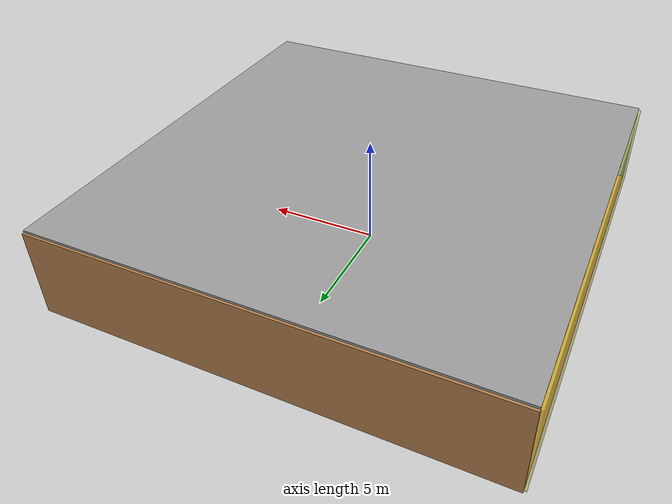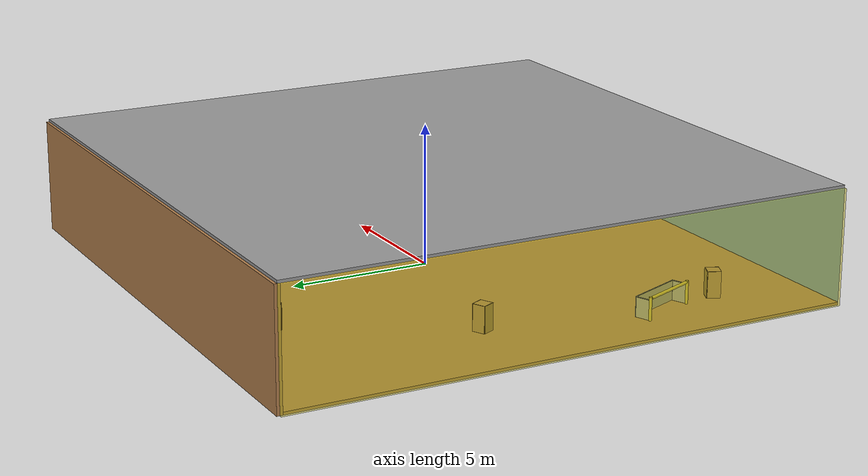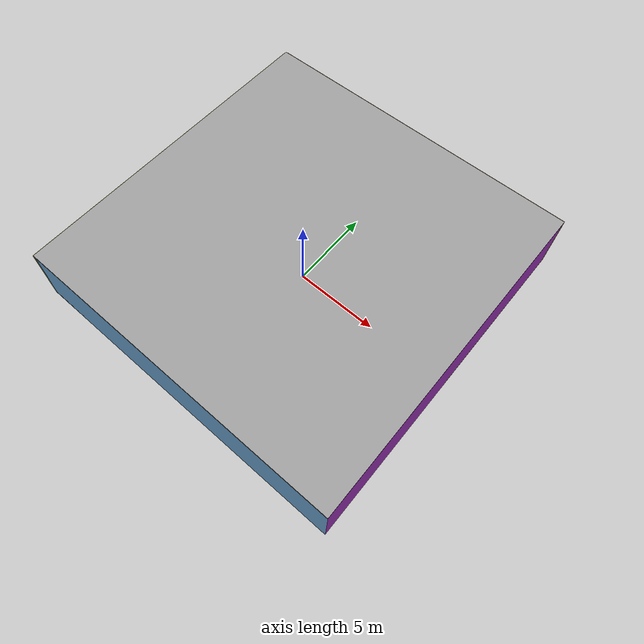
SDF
<sdf version="1.4">
 <world name="default">
  <physics type="ode">
   <max_step_size>0.001</max_step_size>
   <real_time_factor>1</real_time_factor>
   <real_time_update_rate>1000</real_time_update_rate>
   <gravity>0 0 -9.8</gravity>
  </physics>
  <scene><ambient>0.4 0.4 0.4 1</ambient><background>0.7 0.7 0.7 1</background><shadows>1</shadows></scene>
  <model name="Surrounding">
   <static>1</static>
   <link name="Ceiling">
    <collision name="Ceiling_Collision"><geometry><box><size>20 20 0.1</size></box></geometry></collision>
    <visual name="Ceiling_Visual">
     <geometry><box><size>20 20 0.1</size></box></geometry>
     <material>
      <script><uri>file://media/materials/scripts/gazebo.material</uri><name>Gazebo/GreyGradientSky</name></script>
     </material>
    </visual>
    <pose>0 0 4.05 0 0 0</pose>
   </link>
   <link name="Wall_South">
    <collision name="Wall_South_Collision">
     <geometry><box><size>20 0 4</size></box></geometry>
     <pose>0 0 2 0 -0 0</pose>
    </collision>
    <visual name="Wall_South_Visual">
     <pose>0 0 2 0 -0 0</pose>
     <geometry><box><size>20 0 4</size></box></geometry>
     <material>
      <script><uri>file://media/materials/scripts/gazebo.material</uri><name>Gazebo/SkyBlue</name></script>
     </material>
    </visual>
    <velocity_decay><linear>0</linear><angular>0</angular></velocity_decay>
    <pose>0 -10 0 0 -0 0</pose>
   </link>
   <link name="Wall_East">
    <collision name="Wall_21_Collision">
     <geometry><box><size>20 0 4</size></box></geometry>
     <pose>0 0 2 0 -0 0</pose>
    </collision>
    <visual name="Wall_21_Visual">
     <pose>0 0 2 0 -0 0</pose>
     <geometry><box><size>20 0 4</size></box></geometry>
     <material>
      <script><uri>file://media/materials/scripts/gazebo.material</uri><name>Gazebo/Purple</name></script>
     </material>
    </visual>
    <velocity_decay><linear>0</linear><angular>0</angular></velocity_decay>
    <pose>10 0 0 0 -0 1.5708</pose>
   </link>
   <link name="Wall_North">
    <collision name="Wall_22_Collision">
     <geometry><box><size>20 0.2 4</size></box></geometry>
     <pose>0 0 2 0 -0 0</pose>
    </collision>
    <visual name="Wall_22_Visual">
     <pose>0 0 2 0 -0 0</pose>
     <geometry><box><size>20 0.2 4</size></box></geometry>
     <material>
      <script><uri>file://media/materials/scripts/gazebo.material</uri><name>Gazebo/WoodPallet</name></script>
     </material>
    </visual>
    <velocity_decay><linear>0</linear><angular>0</angular></velocity_decay>
    <pose>0 10 0 0 -0 0</pose>
   </link>
   <link name="Wall_West">
    <collision name="Wall_23_Collision">
     <geometry><box><size>20 0.2 4</size></box></geometry>
     <pose>0 0 2 0 -0 0</pose>
    </collision>
    <visual name="Wall_23_Visual">
     <pose>0 0 2 0 -0 0</pose>
     <geometry><box><size>20 0.2 4</size></box></geometry>
     <material>
      <script>
       <uri>file://media/materials/scripts/gazebo.material</uri>
       <name>Gazebo/YellowTransparent</name>
      </script>
     </material>
    </visual>
    <velocity_decay><linear>0</linear><angular>0</angular></velocity_decay>
    <pose>-10 0 0 0 0 -1.5708</pose>
   </link>
   <link name="Ground_link">
    <collision name="collision">
     <pose>0 0 .05 0 -0 0</pose>
     <geometry><box><size>20 20 0.1</size></box></geometry>
    </collision>
    <visual name="visual">
     <pose>0 0 .05 0 -0 0</pose>
     <geometry><box><size>20 20 0.1</size></box></geometry>
     <material>
      <script><uri>file://media/materials/scripts/gazebo.material</uri><name>Gazebo/WoodPallet</name></script>
     </material>
    </visual>
   </link>
   <static>1</static>
  </model>
  <spherical_coordinates>
   <surface_model>EARTH_WGS84</surface_model>
   <latitude_deg>0</latitude_deg>
   <longitude_deg>0</longitude_deg>
   <elevation>0</elevation>
   <heading_deg>0</heading_deg>
  </spherical_coordinates>
  <light name="lightball_0" type="diffuse">
   <diffuse>0.8 0.8 0.8 1</diffuse>
   <specular>0.2 0.2 0.2 1</specular>
   <attenuation>
    <range>100</range>
    <constant>0.7</constant>
    <linear>0.01</linear>
    <quadratic>0.001</quadratic>
   </attenuation>
   <direction>-0.5 0.1 -0.9</direction>
   <pose>9.13939917648 9.8612160823 3.43034644834 0 0 0</pose>
  </light>
  <light name="lightball_1" type="diffuse">
   <diffuse>0.8 0.8 0.8 1</diffuse>
   <specular>0.2 0.2 0.2 1</specular>
   <attenuation>
    <range>100</range>
    <constant>0.7</constant>
    <linear>0.01</linear>
    <quadratic>0.001</quadratic>
   </attenuation>
   <direction>-0.5 0.1 -0.9</direction>
   <pose>9.60064232408 -0.35998015296 0.785826921883 0 0 0</pose>
  </light>
  <light name="lightball_2" type="diffuse">
   <diffuse>0.8 0.8 0.8 1</diffuse>
   <specular>0.2 0.2 0.2 1</specular>
   <attenuation>
    <range>100</range>
    <constant>0.7</constant>
    <linear>0.01</linear>
    <quadratic>0.001</quadratic>
   </attenuation>
   <direction>-0.5 0.1 -0.9</direction>
   <pose>-1.28250590999 9.57803224398 2.3583279484 0 0 0</pose>
  </light>
  <light name="lightball_3" type="diffuse">
   <diffuse>0.8 0.8 0.8 1</diffuse>
   <specular>0.2 0.2 0.2 1</specular>
   <attenuation>
    <range>100</range>
    <constant>0.7</constant>
    <linear>0.01</linear>
    <quadratic>0.001</quadratic>
   </attenuation>
   <direction>-0.5 0.1 -0.9</direction>
   <pose>-4.12718904429 0.610219349389 2.55968767813 0 0 0</pose>
  </light>
  <light name="lightball_4" type="diffuse">
   <diffuse>0.8 0.8 0.8 1</diffuse>
   <specular>0.2 0.2 0.2 1</specular>
   <attenuation>
    <range>100</range>
    <constant>0.7</constant>
    <linear>0.01</linear>
    <quadratic>0.001</quadratic>
   </attenuation>
   <direction>-0.5 0.1 -0.9</direction>
   <pose>6.45450647237 1.01437494456 1.45854030264 0 0 0</pose>
  </light>
  <light name="lightball_5" type="diffuse">
   <diffuse>0.8 0.8 0.8 1</diffuse>
   <specular>0.2 0.2 0.2 1</specular>
   <attenuation>
    <range>100</range>
    <constant>0.7</constant>
    <linear>0.01</linear>
    <quadratic>0.001</quadratic>
   </attenuation>
   <direction>-0.5 0.1 -0.9</direction>
   <pose>-2.19956640169 3.97587321433 3.80950229569 0 0 0</pose>
  </light>
  <light name="lightball_6" type="diffuse">
   <diffuse>0.8 0.8 0.8 1</diffuse>
   <specular>0.2 0.2 0.2 1</specular>
   <attenuation>
    <range>100</range>
    <constant>0.7</constant>
    <linear>0.01</linear>
    <quadratic>0.001</quadratic>
   </attenuation>
   <direction>-0.5 0.1 -0.9</direction>
   <pose>-9.65194826045 0.751010293527 0.845135341791 0 0 0</pose>
  </light>
  <include><uri>model://cabinet</uri><pose>-7.56042407956 -6.72585202928 0 0 0 1.16007953585</pose></include>
  <include>
   <uri>model://robocup_3Dsim_goal</uri>
   <pose>-8.19698917685 -4.55313382896 0 0 0 0.386605257699</pose>
  </include>
  <include><uri>model://cabinet</uri><pose>-6.86847499787 1.58467102818 0 0 0 2.02955436889</pose></include>
  <include><uri>model://cabinet</uri><pose>-3.73938970206 7.46713723432 0 0 0 0.338218561555</pose></include>
  <include><uri>model://cabinet</uri><pose>1.63533325452 -5.09006195883 0 0 0 1.01241287477</pose></include>
  <include>
   <uri>model://robocup_3Dsim_goal</uri>
   <pose>4.90880408286 -7.86368205661 0 0 0 2.72809418211</pose>
  </include>
  <include>
   <uri>model://construction_cone</uri>
   <pose>6.96912131402 1.87677186999 0 0 0 0.953491763693</pose>
  </include>
  <include>
   <uri>model://construction_cone</uri>
   <pose>7.39349116071 4.22412127843 0 0 0 1.04742863952</pose>
  </include>
  <include><uri>model://table</uri><pose>6.96762260493 7.8224314811 0 0 0 1.95295850678</pose></include>
 </world>
</sdf>

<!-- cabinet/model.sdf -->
<sdf version="1.5">
  <model name="cabinet">
    <static>true</static>
    <link name="cabinet_bottom_plate">
      <inertial>
        <pose>0 0 -1 0 0 0</pose>
        <inertia>
          <ixx>2.050000</ixx>
          <ixy>0</ixy>
          <ixz>0</ixz>
          <iyy>2.050000</iyy>
          <iyz>0</iyz>
          <izz>2.050000</izz>
        </inertia>
        <mass>25.000000</mass>
      </inertial>
      <collision name="cabinet_bottom_plate_geom">
        <pose>0 0 0.010000 0 0 0</pose>
        <geometry>
          <box>
            <size>0.450000 0.450000 0.020000</size>
          </box>
        </geometry>
      </collision>
      <visual name="cabinet_bottom_plate_geom_visual">
        <pose>0 0 0.010000 0 0 0</pose>
        <geometry>
          <box>
            <size>0.450000 0.450000 0.020000</size>
          </box>
        </geometry>
        <material>
          <script>
            <uri>model://media/materials/scripts/gazebo.material</uri>
            <name>Gazebo/Wood</name>
          </script>
        </material>
      </visual>
      <collision name="cabinet_bottom_plate_geom_cabinet_back_plate">
        <pose>0.235000 0 0.510000 0 0 0</pose>
        <geometry>
          <box>
            <size>0.020000 0.450000 1.020000</size>
          </box>
        </geometry>
      </collision>
      <visual name="cabinet_bottom_plate_geom_cabinet_back_plate_visual">
        <pose>0.235000 0 0.510000 0 0 0</pose>
        <geometry>
          <box>
            <size>0.020000 0.450000 1.020000</size>
          </box>
        </geometry>
        <material>
          <script>
            <uri>model://media/materials/scripts/gazebo.material</uri>
            <name>Gazebo/Wood</name>
          </script>
        </material>
      </visual>
      <collision name="cabinet_bottom_plate_geom_cabinet_left_plate">
        <pose>0 0.235000 0.510000 0 0 0</pose>
        <geometry>
          <box>
            <size>0.450000 0.020000 1.020000</size>
          </box>
        </geometry>
      </collision>
      <visual name="cabinet_bottom_plate_geom_cabinet_left_plate_visual">
        <pose>0 0.235000 0.510000 0 0 0</pose>
        <geometry>
          <box>
            <size>0.450000 0.020000 1.020000</size>
          </box>
        </geometry>
        <material>
          <script>
            <uri>model://media/materials/scripts/gazebo.material</uri>
            <name>Gazebo/Wood</name>
          </script>
        </material>
      </visual>
      <collision name="cabinet_bottom_plate_geom_cabinet_middle_plate">
        <pose>0 0 0.510000 0 0 0</pose>
        <geometry>
          <box>
            <size>0.450000 0.450000 0.020000</size>
          </box>
        </geometry>
      </collision>
      <visual name="cabinet_bottom_plate_geom_cabinet_middle_plate_visual">
        <pose>0 0 0.510000 0 0 0</pose>
        <geometry>
          <box>
            <size>0.450000 0.450000 0.020000</size>
          </box>
        </geometry>
        <material>
          <script>
            <uri>model://media/materials/scripts/gazebo.material</uri>
            <name>Gazebo/Wood</name>
          </script>
        </material>
      </visual>
      <collision name="cabinet_bottom_plate_geom_cabinet_right_plate">
        <pose>0 -0.235000 0.510000 0 0 0</pose>
        <geometry>
          <box>
            <size>0.450000 0.020000 1.020000</size>
          </box>
        </geometry>
      </collision>
      <visual name="cabinet_bottom_plate_geom_cabinet_right_plate_visual">
        <pose>0 -0.235000 0.510000 0 0 0</pose>
        <geometry>
          <box>
            <size>0.450000 0.020000 1.020000</size>
          </box>
        </geometry>
        <material>
          <script>
            <uri>model://media/materials/scripts/gazebo.material</uri>
            <name>Gazebo/Wood</name>
          </script>
        </material>
      </visual>
      <collision name="cabinet_bottom_plate_geom_cabinet_top_plate">
        <pose>0 0 1.010000 0 0 0</pose>
        <geometry>
          <box>
            <size>0.450000 0.450000 0.020000</size>
          </box>
        </geometry>
      </collision>
      <visual name="cabinet_bottom_plate_geom_cabinet_top_plate_visual">
        <pose>0 0 1.010000 0 0 0</pose>
        <geometry>
          <box>
            <size>0.450000 0.450000 0.020000</size>
          </box>
        </geometry>
        <material>
          <script>
            <uri>model://media/materials/scripts/gazebo.material</uri>
            <name>Gazebo/Wood</name>
          </script>
        </material>
      </visual>
    </link>
  </model>
</sdf>

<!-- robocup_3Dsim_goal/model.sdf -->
<sdf version="1.5">
  <model name="robocup_3d_goal">
    <static>true</static>
    <link name="left_post">
      <pose>0 1.05 0.45 0 0 0</pose>
      <collision name="collision">
        <geometry>
          <cylinder>
            <radius>0.05</radius>
            <length>0.9</length>
          </cylinder>
        </geometry>
      </collision>
      <visual name="visual">
        <geometry>
          <cylinder>
            <radius>0.05</radius>
            <length>0.9</length>
          </cylinder>
        </geometry>
        <material>
          <script>
            <uri>file://media/materials/scripts/gazebo.material</uri>
            <name>Gazebo/ZincYellow</name>
          </script>
        </material>
      </visual>
    </link>
    <link name="left_support_horiz_lower">
      <pose>0.30 1.05 0.01 0 0 0</pose>
      <collision name="collision">
        <geometry>
          <box>
            <size>0.50 0.02 0.02</size>
          </box>
        </geometry>
      </collision>
      <visual name="visual">
        <geometry>
          <box>
            <size>0.50 0.02 0.02</size>
          </box>
        </geometry>
        <material>
          <script>
            <uri>file://media/materials/scripts/gazebo.material</uri>
            <name>Gazebo/White</name>
          </script>
        </material>
      </visual>
    </link>
    <link name="left_support_horiz_upper">
      <pose>0.30 1.05 0.79 0 0 0</pose>
      <collision name="collision">
        <geometry>
          <box>
            <size>0.50 0.02 0.02</size>
          </box>
        </geometry>
      </collision>
      <visual name="visual">
        <geometry>
          <box>
            <size>0.50 0.02 0.02</size>
          </box>
        </geometry>
        <material>
          <script>
            <uri>file://media/materials/scripts/gazebo.material</uri>
            <name>Gazebo/White</name>
          </script>
        </material>
      </visual>
    </link>
    <link name="left_support_vertical">
      <pose>0.56 1.05 0.4 0 1.5708 0</pose>
      <collision name="collision">
        <geometry>
          <box>
            <size>0.80 0.02 0.02</size>
          </box>
        </geometry>
      </collision>
      <visual name="visual">
        <geometry>
          <box>
            <size>0.80 0.02 0.02</size>
          </box>
        </geometry>
        <material>
          <script>
            <uri>file://media/materials/scripts/gazebo.material</uri>
            <name>Gazebo/White</name>
          </script>
        </material>
      </visual>
    </link>
    <link name="right_support_horiz_lower">
      <pose>0.30 -1.05 0.01 0 0 0</pose>
      <collision name="collision">
        <geometry>
          <box>
            <size>0.50 0.02 0.02</size>
          </box>
        </geometry>
      </collision>
      <visual name="visual">
        <geometry>
          <box>
            <size>0.50 0.02 0.02</size>
          </box>
        </geometry>
        <material>
          <script>
            <uri>file://media/materials/scripts/gazebo.material</uri>
            <name>Gazebo/White</name>
          </script>
        </material>
      </visual>
    </link>
    <link name="right_support_horiz_upper">
      <pose>0.30 -1.05 0.79 0 0 0</pose>
      <collision name="collision">
        <geometry>
          <box>
            <size>0.50 0.02 0.02</size>
          </box>
        </geometry>
      </collision>
      <visual name="visual">
        <geometry>
          <box>
            <size>0.50 0.02 0.02</size>
          </box>
        </geometry>
        <material>
          <script>
            <uri>file://media/materials/scripts/gazebo.material</uri>
            <name>Gazebo/White</name>
          </script>
        </material>
      </visual>
    </link>
    <link name="right_support_vertical">
      <pose>0.56 -1.05 0.4 0 1.5708 0</pose>
      <collision name="collision">
        <geometry>
          <box>
            <size>0.80 0.02 0.02</size>
          </box>
        </geometry>
      </collision>
      <visual name="visual">
        <geometry>
          <box>
            <size>0.80 0.02 0.02</size>
          </box>
        </geometry>
        <material>
          <script>
            <uri>file://media/materials/scripts/gazebo.material</uri>
            <name>Gazebo/White</name>
          </script>
        </material>
      </visual>
    </link>
    <link name="center_support_horiz_lower">
      <pose>0.56 0 0.01 0 1.5708 0</pose>
      <collision name="collision">
        <geometry>
          <box>
            <size>0.02 2.08 0.02</size>
          </box>
        </geometry>
      </collision>
      <visual name="visual">
        <geometry>
          <box>
            <size>0.02 2.08 0.02</size>
          </box>
        </geometry>
        <material>
          <script>
            <uri>file://media/materials/scripts/gazebo.material</uri>
            <name>Gazebo/White</name>
          </script>
        </material>
      </visual>
    </link>
    <link name="center_support_horiz_upper">
      <pose>0.56 0 0.79 0 1.5708 0</pose>
      <collision name="collision">
        <geometry>
          <box>
            <size>0.02 2.08 0.02</size>
          </box>
        </geometry>
      </collision>
      <visual name="visual">
        <geometry>
          <box>
            <size>0.02 2.08 0.02</size>
          </box>
        </geometry>
        <material>
          <script>
            <uri>file://media/materials/scripts/gazebo.material</uri>
            <name>Gazebo/White</name>
          </script>
        </material>
      </visual>
    </link>
    <link name="right_post">
      <pose>0 -1.05 0.45 0 0 0</pose>
      <collision name="collision">
        <geometry>
          <cylinder>
            <radius>0.05</radius>
            <length>0.9</length>
          </cylinder>
        </geometry>
      </collision>
      <visual name="visual">
        <geometry>
          <cylinder>
            <radius>0.05</radius>
            <length>0.9</length>
          </cylinder>
        </geometry>
        <material>
          <script>
            <uri>file://media/materials/scripts/gazebo.material</uri>
            <name>Gazebo/ZincYellow</name>
          </script>
        </material>
      </visual>
    </link>
    <link name="crossbar">
      <pose>0 0 0.85 1.57 1.57 0</pose>
      <collision name="collision">
        <geometry>
          <cylinder>
            <radius>0.05</radius>
            <length>2.0</length>
          </cylinder>
        </geometry>
      </collision>
      <visual name="visual">
        <geometry>
          <cylinder>
            <radius>0.05</radius>
            <length>2.0</length>
          </cylinder>
        </geometry>
        <material>
          <script>
            <uri>file://media/materials/scripts/gazebo.material</uri>
            <name>Gazebo/ZincYellow</name>
          </script>
        </material>
      </visual>
    </link>
    <link name="center_net">
      <pose>0.56 0 0.40 0 0 0</pose>
      <collision name="collision">
        <geometry>
          <box>
            <size>0.01 2.1 0.80</size>
          </box>
        </geometry>
      </collision>
      <visual name="visual">
        <geometry>
          <box>
            <size>0.01 2.1 0.80</size>
          </box>
        </geometry>
        <material>
          <script>
            <uri>model://../model_source/models/robocup09_spl_field/materials/scripts/</uri>
            <uri>model://../model_source/models/robocup09_spl_field/materials/textures/</uri>
            <name>RoboCup/Net</name>
          </script>
        </material>
      </visual>
    </link>
    <link name="left_net">
      <pose>0.30 1.05 0.40 0 0 0</pose>
      <collision name="collision">
        <geometry>
          <box>
            <size>0.50 0.01 0.76</size>
          </box>
        </geometry>
      </collision>
      <visual name="visual">
        <geometry>
          <box>
            <size>0.50 0.01 0.76</size>
          </box>
        </geometry>
        <material>
          <script>
            <uri>model://../model_source/models/robocup09_spl_field/materials/scripts/</uri>
            <uri>model://../model_source/models/robocup09_spl_field/materials/textures/</uri>
            <name>RoboCup/Net</name>
          </script>
        </material>
      </visual>
    </link>
    <link name="right_net">
      <pose>0.30 -1.05 0.40 0 0 0</pose>
      <collision name="collision">
        <geometry>
          <box>
            <size>0.50 0.01 0.76</size>
          </box>
        </geometry>
      </collision>
      <visual name="visual">
        <geometry>
          <box>
            <size>0.50 0.01 0.76</size>
          </box>
        </geometry>
        <material>
          <script>
            <uri>model://../model_source/models/robocup09_spl_field/materials/scripts/</uri>
            <uri>model://../model_source/models/robocup09_spl_field/materials/textures/</uri>
            <name>RoboCup/Net</name>
          </script>
        </material>
      </visual>
    </link>
  </model>
</sdf>

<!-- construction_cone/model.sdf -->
<sdf version="1.5">
  <model name="Construction Cone">
    <link name="link">
      <collision name="collision">
        <geometry>
          <mesh>
            <scale>10 10 10</scale>
            <uri>file://isr-testbed/construction_cone/meshes/construction_cone.dae</uri>
          </mesh>
        </geometry>
      </collision>
      <visual name="visual">
        <geometry>
          <mesh>
            <scale>10 10 10</scale>
            <uri>file://isr-testbed/construction_cone/meshes/construction_cone.dae</uri>
          </mesh>
        </geometry>
      </visual>
    </link>
  </model>
</sdf>

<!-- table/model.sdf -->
<sdf version="1.5">
  <model name="table">
    <static>true</static>
    <link name="link">
      <collision name="surface">
        <pose>0 0 1.0 0 0 0</pose>
        <geometry>
          <box>
            <size>1.5 0.8 0.03</size>
          </box>
        </geometry>
        <surface>
          <friction>
            <ode>
              <mu>0.6</mu>
              <mu2>0.6</mu2>
            </ode>
          </friction>
        </surface>
      </collision>
      <visual name="visual1">
        <pose>0 0 1.0 0 0 0</pose>
        <geometry>
          <box>
            <size>1.5 0.8 0.03</size>
          </box>
        </geometry>
        <material>
          <script>
            <uri>model://media/materials/scripts/gazebo.material</uri>
            <name>Gazebo/Wood</name>
          </script>
        </material>
      </visual>
      <collision name="front_left_leg">
        <pose>0.68 0.38 0.5 0 0 0</pose>
        <geometry>
          <cylinder>
            <radius>0.02</radius>
            <length>1.0</length>
          </cylinder>
        </geometry>
      </collision>
      <visual name="front_left_leg">
        <pose>0.68 0.38 0.5 0 0 0</pose>
        <geometry>
          <cylinder>
            <radius>0.02</radius>
            <length>1.0</length>
          </cylinder>
        </geometry>
        <material>
          <script>
            <uri>model://media/materials/scripts/gazebo.material</uri>
            <name>Gazebo/Grey</name>
          </script>
        </material>
      </visual>
      <collision name="front_right_leg">
        <pose>0.68 -0.38 0.5 0 0 0</pose>
        <geometry>
          <cylinder>
            <radius>0.02</radius>
            <length>1.0</length>
          </cylinder>
        </geometry>
      </collision>
      <visual name="front_right_leg">
        <pose>0.68 -0.38 0.5 0 0 0</pose>
        <geometry>
          <cylinder>
            <radius>0.02</radius>
            <length>1.0</length>
          </cylinder>
        </geometry>
        <material>
          <script>
            <uri>model://media/materials/scripts/gazebo.material</uri>
            <name>Gazebo/Grey</name>
          </script>
        </material>
      </visual>
      <collision name="back_right_leg">
        <pose>-0.68 -0.38 0.5 0 0 0</pose>
        <geometry>
          <cylinder>
            <radius>0.02</radius>
            <length>1.0</length>
          </cylinder>
        </geometry>
      </collision>
      <visual name="back_right_leg">
        <pose>-0.68 -0.38 0.5 0 0 0</pose>
        <geometry>
          <cylinder>
            <radius>0.02</radius>
            <length>1.0</length>
          </cylinder>
        </geometry>
        <material>
          <script>
            <uri>model://media/materials/scripts/gazebo.material</uri>
            <name>Gazebo/Grey</name>
          </script>
        </material>
      </visual>
      <collision name="back_left_leg">
        <pose>-0.68 0.38 0.5 0 0 0</pose>
        <geometry>
          <cylinder>
            <radius>0.02</radius>
            <length>1.0</length>
          </cylinder>
        </geometry>
      </collision>
      <visual name="back_left_leg">
        <pose>-0.68 0.38 0.5 0 0 0</pose>
        <geometry>
          <cylinder>
            <radius>0.02</radius>
            <length>1.0</length>
          </cylinder>
        </geometry>
        <material>
          <script>
            <uri>model://media/materials/scripts/gazebo.material</uri>
            <name>Gazebo/Grey</name>
          </script>
        </material>
      </visual>
    </link>
  </model>
</sdf>
